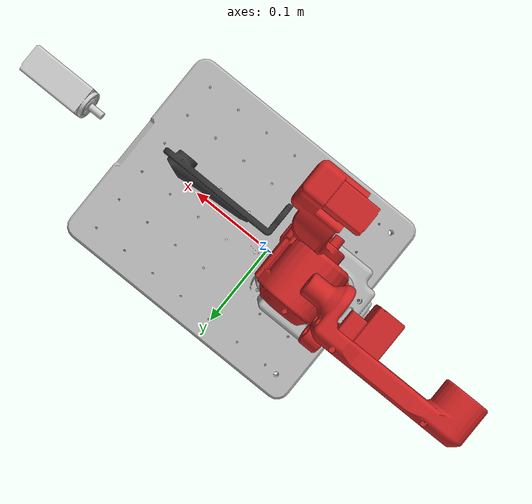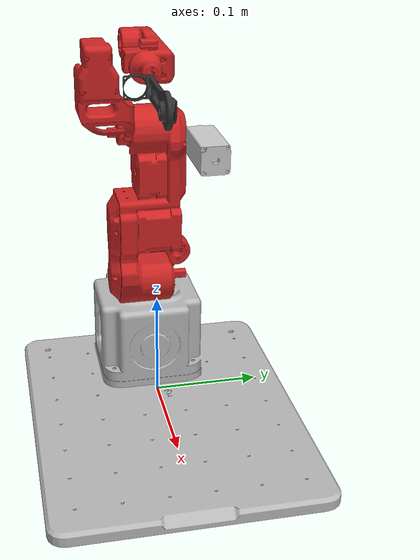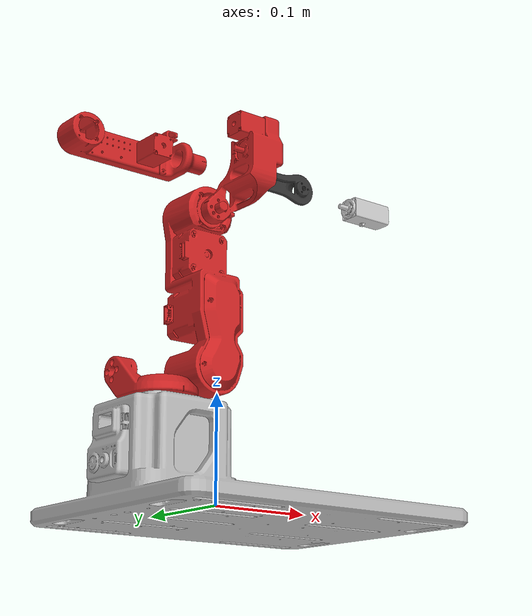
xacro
<?xml version="1.0" encoding="utf-8"?>
<robot
  name="dummy_ros_sim" xmlns:xacro="http://ros.org/wiki/xacro">
  <link
    name="base_link">
    <inertial>
      <origin
        xyz="0.011677 6.9714E-05 0.0056182"
        rpy="0 0 0" />
      <mass
        value="1.5265" />
      <inertia
        ixx="0.0064142"
        ixy="-3.3349E-07"
        ixz="-1.3589E-05"
        iyy="0.0090227"
        iyz="1.5342E-07"
        izz="0.014977" />
    </inertial>
    <visual>
      <origin
        xyz="0 0 0"
        rpy="0 0 0" />
      <geometry>
        <mesh
          filename="package://dummy_ros_sim/meshes/base_link.STL" />
      </geometry>
      <material
        name="">
        <color
          rgba="0.72157 0.72157 0.72157 1" />
      </material>
    </visual>
    <collision>
      <origin
        xyz="0 0 0"
        rpy="0 0 0" />
      <geometry>
        <mesh
          filename="package://dummy_ros_sim/meshes/base_link.STL" />
      </geometry>
    </collision>
  </link>
  <link
    name="link1">
    <inertial>
      <origin
        xyz="-0.0056565 -0.0056156 0.0062868"
        rpy="0 0 0" />
      <mass
        value="0.052137" />
      <inertia
        ixx="1.9368E-05"
        ixy="-7.1474E-06"
        ixz="5.1109E-06"
        iyy="2.2604E-05"
        iyz="3.282E-06"
        izz="3.1983E-05" />
    </inertial>
    <visual>
      <origin
        xyz="0 0 0"
        rpy="0 0 0" />
      <geometry>
        <mesh
          filename="package://dummy_ros_sim/meshes/link1.STL" />
      </geometry>
      <material
        name="">
        <color
          rgba="0.81176 0.1451 0.1451 1" />
      </material>
    </visual>
    <collision>
      <origin
        xyz="0 0 0"
        rpy="0 0 0" />
      <geometry>
        <mesh
          filename="package://dummy_ros_sim/meshes/link1.STL" />
      </geometry>
    </collision>
  </link>
  <joint
    name="joint1"
    type="revolute">
    <origin
      xyz="-0.058 0 0.09125"
      rpy="0 0 3.1416" />
    <parent
      link="base_link" />
    <child
      link="link1" />
    <axis
      xyz="0 0 -1" />
    <limit
      lower="-3.14"
      upper="3.14"
      effort="100"
      velocity="1" />
  </joint>
  <link
    name="link2">
    <inertial>
      <origin
        xyz="-0.0020583 0.071447 -0.025784"
        rpy="0 0 0" />
      <mass
        value="0.31639" />
      <inertia
        ixx="0.00053447"
        ixy="-1.2154E-06"
        ixz="-1.4253E-06"
        iyy="0.000104"
        iyz="-3.8331E-05"
        izz="0.00053485" />
    </inertial>
    <visual>
      <origin
        xyz="0 0 0"
        rpy="0 0 0" />
      <geometry>
        <mesh
          filename="package://dummy_ros_sim/meshes/link2.STL" />
      </geometry>
      <material
        name="">
        <color
          rgba="0.81176 0.1451 0.1451 1" />
      </material>
    </visual>
    <collision>
      <origin
        xyz="0 0 0"
        rpy="0 0 0" />
      <geometry>
        <mesh
          filename="package://dummy_ros_sim/meshes/link2.STL" />
      </geometry>
    </collision>
  </link>
  <joint
    name="joint2"
    type="revolute">
    <origin
      xyz="-0.035 -0.021695 0.02275"
      rpy="1.5708 0 0" />
    <parent
      link="link1" />
    <child
      link="link2" />
    <axis
      xyz="0 0 -1" />
    <limit
      lower="-3.14"
      upper="3.14"
      effort="100"
      velocity="1" />
  </joint>
  <link
    name="link3">
    <inertial>
      <origin
        xyz="0.022524 0.04444 0.020961"
        rpy="0 0 0" />
      <mass
        value="0.064123" />
      <inertia
        ixx="2.5889E-05"
        ixy="-3.4323E-06"
        ixz="-2.0349E-06"
        iyy="1.482E-05"
        iyz="-5.2064E-06"
        izz="2.0053E-05" />
    </inertial>
    <visual>
      <origin
        xyz="0 0 0"
        rpy="0 0 0" />
      <geometry>
        <mesh
          filename="package://dummy_ros_sim/meshes/link3.STL" />
      </geometry>
      <material
        name="">
        <color
          rgba="0.81176 0.1451 0.1451 1" />
      </material>
    </visual>
    <collision>
      <origin
        xyz="0 0 0"
        rpy="0 0 0" />
      <geometry>
        <mesh
          filename="package://dummy_ros_sim/meshes/link3.STL" />
      </geometry>
    </collision>
  </link>
  <joint
    name="joint3"
    type="revolute">
    <origin
      xyz="0 0.146 -0.04754"
      rpy="0 0 0" />
    <parent
      link="link2" />
    <child
      link="link3" />
    <axis
      xyz="0 0 1" />
    <limit
      lower="-3.14"
      upper="3.14"
      effort="100"
      velocity="1" />
  </joint>
  <link
    name="link4">
    <inertial>
      <origin
        xyz="-0.0087728 -3.8099E-05 0.05782"
        rpy="0 0 0" />
      <mass
        value="0.056451" />
      <inertia
        ixx="4.299E-05"
        ixy="-6.8652E-08"
        ixz="-2.1487E-06"
        iyy="4.1293E-05"
        iyz="-2.8866E-07"
        izz="5.9024E-06" />
    </inertial>
    <visual>
      <origin
        xyz="0 0 0"
        rpy="0 0 0" />
      <geometry>
        <mesh
          filename="package://dummy_ros_sim/meshes/link4.STL" />
      </geometry>
      <material
        name="">
        <color
          rgba="0.81176 0.1451 0.1451 1" />
      </material>
    </visual>
    <collision>
      <origin
        xyz="0 0 0"
        rpy="0 0 0" />
      <geometry>
        <mesh
          filename="package://dummy_ros_sim/meshes/link4.STL" />
      </geometry>
    </collision>
  </link>
  <joint
    name="joint4"
    type="revolute">
    <origin
      xyz="0.0038692 0.051904 0.025845"
      rpy="3.1416 1.5708 0" />
    <parent
      link="link3" />
    <child
      link="link4" />
    <axis
      xyz="0 0 -1" />
    <limit
      lower="-3.14"
      upper="3.14"
      effort="100"
      velocity="1" />
  </joint>
  <link
    name="link5">
    <inertial>
      <origin
        xyz="-0.024226 2.256E-05 -0.0025234"
        rpy="0 0 0" />
      <mass
        value="0.0094131" />
      <inertia
        ixx="4.9665E-07"
        ixy="-1.5323E-09"
        ixz="1.4814E-07"
        iyy="6.1043E-06"
        iyz="2.5175E-10"
        izz="6.4252E-06" />
    </inertial>
    <visual>
      <origin
        xyz="0 0 0"
        rpy="0 0 0" />
      <geometry>
        <mesh
          filename="package://dummy_ros_sim/meshes/link5.STL" />
      </geometry>
      <material
        name="">
        <color
          rgba="0.2 0.2 0.2 1" />
      </material>
    </visual>
    <collision>
      <origin
        xyz="0 0 0"
        rpy="0 0 0" />
      <geometry>
        <mesh
          filename="package://dummy_ros_sim/meshes/link5.STL" />
      </geometry>
    </collision>
  </link>
  <joint
    name="joint5"
    type="revolute">
    <origin
      xyz="0.0109 -9.6372E-05 0.11887"
      rpy="3.1416 1.5708 0" />
    <parent
      link="link4" />
    <child
      link="link5" />
    <axis
      xyz="0 0 1" />
    <limit
      lower="-3.14"
      upper="3.14"
      effort="100"
      velocity="1" />
  </joint>
  <link
    name="link6">
    <inertial>
      <origin
        xyz="-9.3325E-05 1.8113E-05 0.022796"
        rpy="0 0 0" />
      <mass
        value="0.018588" />
      <inertia
        ixx="8.0336E-07"
        ixy="9.1229E-12"
        ixz="-3.9256E-12"
        iyy="8.0342E-07"
        iyz="1.1339E-11"
        izz="1.1882E-06" />
    </inertial>
    <visual>
      <origin
        xyz="0 0 0"
        rpy="0 0 0" />
      <geometry>
        <mesh
          filename="package://dummy_ros_sim/meshes/link6.STL" />
      </geometry>
      <material
        name="">
        <color
          rgba="0.79608 0.79608 0.79608 1" />
      </material>
    </visual>
    <collision>
      <origin
        xyz="0 0 0"
        rpy="0 0 0" />
      <geometry>
        <mesh
          filename="package://dummy_ros_sim/meshes/link6.STL" />
      </geometry>
    </collision>
  </link>
  <joint
    name="joint6"
    type="revolute">
    <origin
      xyz="-0.070746 0 0.010807"
      rpy="0 1.5708 0" />
    <parent
      link="link5" />
    <child
      link="link6" />
    <axis
      xyz="0 0 -1" />
    <limit
      lower="-3.14"
      upper="3.14"
      effort="100"
      velocity="1" />
  </joint>

<xacro:macro name="transmission_block" params="joint_name">
    <transmission name="tran1">
      <type>transmission_interface/SimpleTransmission</type>
      <joint name="${joint_name}">
        <hardwareInterface>hardware_interface/PositionJointInterface</hardwareInterface>
      </joint>
      <actuator name="motor1">
        <hardwareInterface>hardware_interface/PositionJointInterface</hardwareInterface>
        <mechanicalReduction>1</mechanicalReduction>
      </actuator>
    </transmission>
  </xacro:macro>

  <xacro:transmission_block joint_name="joint1"/>
  <xacro:transmission_block joint_name="joint2"/>
  <xacro:transmission_block joint_name="joint3"/>
  <xacro:transmission_block joint_name="joint4"/>
  <xacro:transmission_block joint_name="joint5"/>
  <xacro:transmission_block joint_name="joint6"/>

  <!-- ros_control plugin -->
  <gazebo>
    <plugin name="gazebo_ros_control" filename="libgazebo_ros_control.so">
      <robotNamespace>/dummy_ros</robotNamespace>
      <robotSimType>gazebo_ros_control/DefaultRobotHWSim</robotSimType>
      <legacyModeNS>true</legacyModeNS>
    </plugin>
  </gazebo>

</robot>
